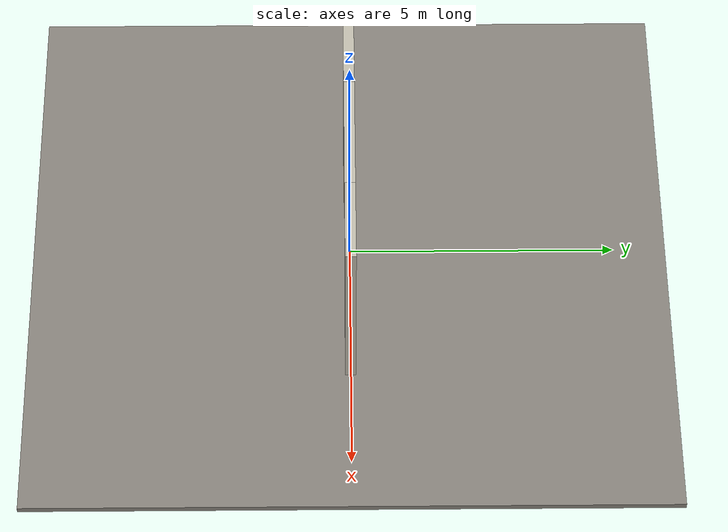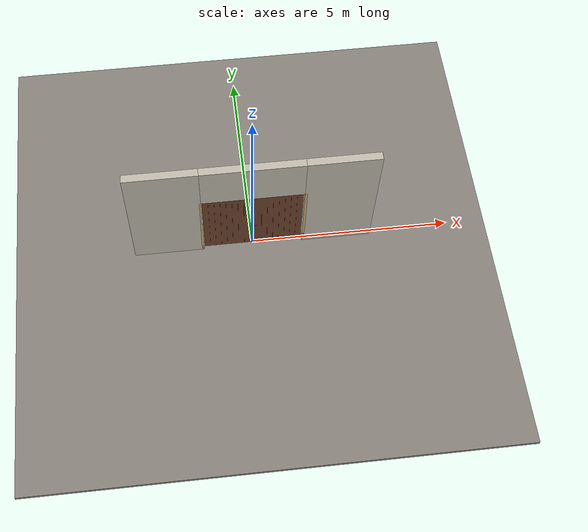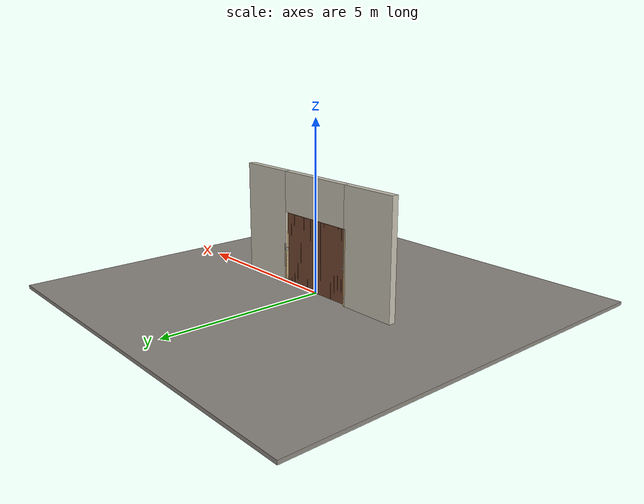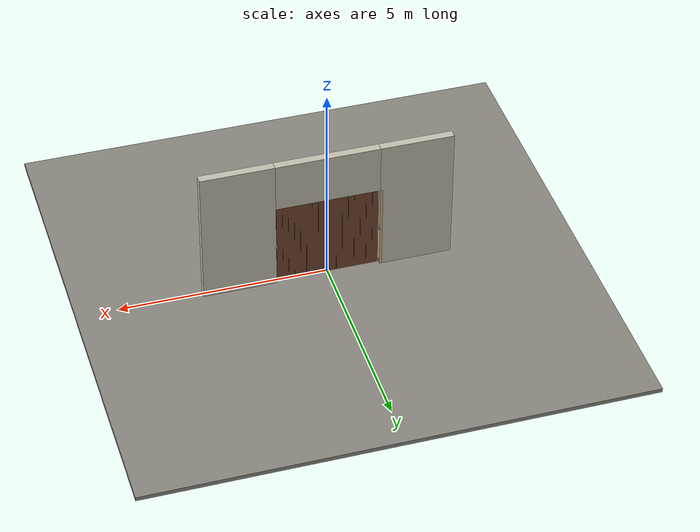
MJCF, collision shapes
<?xml version="1.0" ?>
<mujoco model="db0005_garage_tiltup_full">
  <compiler angle="radian" meshdir="../../hardware" texturedir="../../textures" autolimits="true" inertiafromgeom="false"/>
  <option timestep="0.002" integrator="implicitfast" cone="elliptic" impratio="10" noslip_iterations="3">
    <flag multiccd="enable"/>
  </option>
  <size memory="16M"/>
  <default>
    <geom condim="4" solref="0.005 1" solimp="0.95 0.99 0.001"/>
    <joint solreflimit="0.005 1" solimplimit="0.95 0.99 0.001"/>
    <tendon solreflimit="0.005 1"/>
    <equality solref="0.002 1"/>
  </default>
  <visual>
    <headlight ambient="0.4 0.4 0.4" diffuse="0.7 0.7 0.7" specular="0.2 0.2 0.2"/>
    <quality shadowsize="4096"/>
    <map znear="0.01" zfar="60"/>
  </visual>
  <asset>
    <mesh name="pull_bdc5e965ab" file="pull_bdc5e965ab.obj"/>
    <material name="mat_floor" rgba="0.55 0.53 0.5 1" specular="0.2" shininess="0.15" reflectance="0"/>
    <material name="mat_wall" rgba="0.78 0.76 0.7 1" specular="0.2" shininess="0.1" reflectance="0"/>
    <material name="mat_frame" rgba="0.82 0.7 0.5 1" specular="0.2" shininess="0.45" reflectance="0"/>
    <material name="mat_door" rgba="0.451 0.276 0.186 1" specular="0.2" shininess="0.4" reflectance="0"/>
    <material name="mat_door_brace" rgba="0.406 0.248 0.167 1" specular="0.2" shininess="0.2" reflectance="0"/>
    <material name="mat_track" rgba="0.65 0.66 0.68 1" specular="0.74" shininess="0.5" reflectance="0.36"/>
    <material name="mat_op_black_matte_metal" rgba="0.05 0.05 0.05 1" specular="0.38" shininess="0.3" reflectance="0.12"/>
    <texture name="skybox" type="skybox" builtin="gradient" rgb1="0.6 0.7 0.85" rgb2="0.9 0.92 0.95" width="256" height="256"/>
  </asset>
  <worldbody>
    <light name="sun" pos="1.5 -2.5 4" dir="-0.3 0.5 -0.8" directional="true" diffuse="0.8 0.8 0.8" specular="0.3 0.3 0.3" castshadow="true"/>
    <light name="fill" pos="-1.5 2.5 3" dir="0.3 -0.5 -0.7" directional="true" diffuse="0.35 0.35 0.4" castshadow="false"/>
    <camera name="robot_view" pos="0 -2.959375 1.918625" xyaxes="1 0 0 0 0.26963 0.962964" fovy="52"/>
    <camera name="far_view" pos="0 2.959375 1.918625" xyaxes="-1 0 0 0 -0.26963 0.962964" fovy="52"/>
    <camera name="iso" pos="2.249125 -2.485875 2.392125" xyaxes="0.741536 0.670913 0 -0.242917 0.268487 0.932151" fovy="46"/>
    <camera name="detail_handle" pos="0.25 -1.1725 1.25" xyaxes="0.975133 0.221621 0 -0.065674 0.288965 0.955084" fovy="38"/>
    <geom name="floor" type="box" size="6 6 0.05" pos="0 0 -0.05" material="mat_floor" group="0" contype="1" conaffinity="1" friction="0.8 0.005 0.0001" density="2400"/>
    <geom name="wall_left" type="box" size="0.8775 0.1 1.69" pos="-2.1225 0 1.69" material="mat_wall" group="0" contype="1" conaffinity="1" friction="0.6 0.005 0.0001" density="800"/>
    <geom name="wall_right" type="box" size="0.8775 0.1 1.69" pos="2.1225 0 1.69" material="mat_wall" group="0" contype="1" conaffinity="1" friction="0.6 0.005 0.0001" density="800"/>
    <geom name="wall_header" type="box" size="1.245 0.1 0.6" pos="0 0 2.78" material="mat_wall" group="0" contype="1" conaffinity="1" friction="0.6 0.005 0.0001" density="800"/>
    <geom name="jamb_l" type="box" size="0.03 0.1 1.09" pos="-1.275 0 1.09" material="mat_frame" group="0" contype="1" conaffinity="1" friction="0.6 0.005 0.0001" density="400"/>
    <geom name="pivot_bracket_l" type="box" size="0.02 0.06 0.03" pos="-1.24 0.06 1.065" material="mat_track" group="1" contype="0" conaffinity="0" density="7850"/>
    <geom name="jamb_r" type="box" size="0.03 0.1 1.09" pos="1.275 0 1.09" material="mat_frame" group="0" contype="1" conaffinity="1" friction="0.6 0.005 0.0001" density="400"/>
    <geom name="pivot_bracket_r" type="box" size="0.02 0.06 0.03" pos="1.24 0.06 1.065" material="mat_track" group="1" contype="0" conaffinity="0" density="7850"/>
    <site name="approach_point" pos="0 -2 0" quat="1 0 0 0" size="0.05" rgba="0.2 0.9 0.2 0.5" group="4"/>
    <site name="goal_point" pos="0 2 0" quat="1 0 0 0" size="0.05" rgba="0.2 0.9 0.2 0.5" group="4"/>
    <site name="door_plane_center" pos="0 0 1.09" quat="1 0 0 0" size="0.02" rgba="0.2 0.9 0.2 0.5" group="4"/>
    <body name="door" pos="0 0 1.065">
      <inertial pos="0 -0.000389 0.008929" mass="83.5559" quat="0.70717 0.707043 0 0" diaginertia="31.428831714 41.219430382 72.615900436"/>
      <joint name="door_hinge" type="hinge" axis="-1 0 0" limited="true" range="0 1.53589" damping="16.35559" frictionloss="2.983284" armature="0.5"/>
      <geom name="door_slab" type="box" size="1.22 0.0225 1.065" pos="0 0 0.01" material="mat_door" group="0" contype="1" conaffinity="1" friction="0.35 0.005 0.0001" density="1"/>
      <geom name="door_plank_gap_1" type="box" size="0.002 0.0235 1.055" pos="-1.076471 0 0.01" material="mat_door_brace" group="1" contype="0" conaffinity="0" density="1"/>
      <geom name="door_plank_gap_2" type="box" size="0.002 0.0235 1.055" pos="-0.932941 0 0.01" material="mat_door_brace" group="1" contype="0" conaffinity="0" density="1"/>
      <geom name="door_plank_gap_3" type="box" size="0.002 0.0235 1.055" pos="-0.789412 0 0.01" material="mat_door_brace" group="1" contype="0" conaffinity="0" density="1"/>
      <geom name="door_plank_gap_4" type="box" size="0.002 0.0235 1.055" pos="-0.645882 0 0.01" material="mat_door_brace" group="1" contype="0" conaffinity="0" density="1"/>
      <geom name="door_plank_gap_5" type="box" size="0.002 0.0235 1.055" pos="-0.502353 0 0.01" material="mat_door_brace" group="1" contype="0" conaffinity="0" density="1"/>
      <geom name="door_plank_gap_6" type="box" size="0.002 0.0235 1.055" pos="-0.358824 0 0.01" material="mat_door_brace" group="1" contype="0" conaffinity="0" density="1"/>
      <geom name="door_plank_gap_7" type="box" size="0.002 0.0235 1.055" pos="-0.215294 0 0.01" material="mat_door_brace" group="1" contype="0" conaffinity="0" density="1"/>
      <geom name="door_plank_gap_8" type="box" size="0.002 0.0235 1.055" pos="-0.071765 0 0.01" material="mat_door_brace" group="1" contype="0" conaffinity="0" density="1"/>
      <geom name="door_plank_gap_9" type="box" size="0.002 0.0235 1.055" pos="0.071765 0 0.01" material="mat_door_brace" group="1" contype="0" conaffinity="0" density="1"/>
      <geom name="door_plank_gap_10" type="box" size="0.002 0.0235 1.055" pos="0.215294 0 0.01" material="mat_door_brace" group="1" contype="0" conaffinity="0" density="1"/>
      <geom name="door_plank_gap_11" type="box" size="0.002 0.0235 1.055" pos="0.358824 0 0.01" material="mat_door_brace" group="1" contype="0" conaffinity="0" density="1"/>
      <geom name="door_plank_gap_12" type="box" size="0.002 0.0235 1.055" pos="0.502353 0 0.01" material="mat_door_brace" group="1" contype="0" conaffinity="0" density="1"/>
      <geom name="door_plank_gap_13" type="box" size="0.002 0.0235 1.055" pos="0.645882 0 0.01" material="mat_door_brace" group="1" contype="0" conaffinity="0" density="1"/>
      <geom name="door_plank_gap_14" type="box" size="0.002 0.0235 1.055" pos="0.789412 0 0.01" material="mat_door_brace" group="1" contype="0" conaffinity="0" density="1"/>
      <geom name="door_plank_gap_15" type="box" size="0.002 0.0235 1.055" pos="0.932941 0 0.01" material="mat_door_brace" group="1" contype="0" conaffinity="0" density="1"/>
      <geom name="door_plank_gap_16" type="box" size="0.002 0.0235 1.055" pos="1.076471 0 0.01" material="mat_door_brace" group="1" contype="0" conaffinity="0" density="1"/>
      <geom name="lift_handle_n" type="mesh" mesh="pull_bdc5e965ab" pos="0 -0.0225 -0.165" quat="0.707107 0.707107 0 0" material="mat_op_black_matte_metal" group="1" contype="0" conaffinity="0" density="3000"/>
      <geom name="lift_handle_col_n" type="box" size="0.1 0.006 0.015" pos="0 -0.0725 -0.165" material="mat_op_black_matte_metal" group="3" contype="1" conaffinity="1" rgba="0.8 0.3 0.3 0.25" friction="0.6 0.005 0.0001" density="3000"/>
      <site name="lift_handle_grip_n" pos="0 -0.0725 -0.165" quat="1 0 0 0" size="0.012" rgba="0.2 0.9 0.2 0.5" group="4"/>
    </body>
  </worldbody>
  <sensor>
    <jointpos name="door_hinge_pos" joint="door_hinge"/>
    <jointvel name="door_hinge_vel" joint="door_hinge"/>
  </sensor>
</mujoco>
